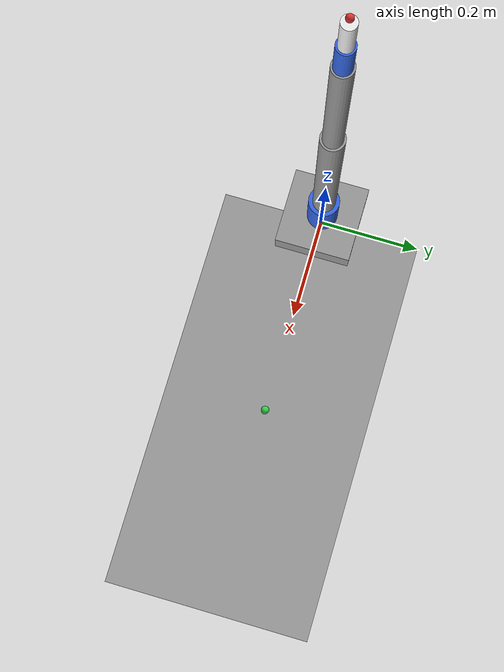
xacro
<?xml version="1.0"?>
<robot name="carotid_arm" xmlns:xacro="http://www.ros.org/wiki/xacro">

  <!-- ═══════════════════════════════════════════════
       Properties
  ═══════════════════════════════════════════════ -->
  <xacro:property name="link_radius"  value="0.025"/>
  <xacro:property name="gray"   value="0.6 0.6 0.6 1"/>
  <xacro:property name="blue"   value="0.2 0.4 0.9 1"/>
  <xacro:property name="red"    value="0.9 0.2 0.2 1"/>
  <xacro:property name="green"  value="0.2 0.8 0.3 1"/>
  <xacro:property name="white"  value="0.95 0.95 0.95 1"/>

  <!-- ═══════════════════════════════════════════════
       Materials
  ═══════════════════════════════════════════════ -->
  <material name="gray">  <color rgba="${gray}"/>  </material>
  <material name="blue">  <color rgba="${blue}"/>  </material>
  <material name="red">   <color rgba="${red}"/>   </material>
  <material name="green"> <color rgba="${green}"/> </material>
  <material name="white"> <color rgba="${white}"/> </material>

  <!-- ═══════════════════════════════════════════════
       Macro: cylindrical link
       params: name, length, radius, color
  ═══════════════════════════════════════════════ -->
  <xacro:macro name="cylinder_link" params="name length radius color">
    <link name="${name}">
      <visual>
        <origin xyz="0 0 ${length/2}" rpy="0 0 0"/>
        <geometry><cylinder length="${length}" radius="${radius}"/></geometry>
        <material name="${color}"/>
      </visual>
      <collision>
        <origin xyz="0 0 ${length/2}" rpy="0 0 0"/>
        <geometry><cylinder length="${length}" radius="${radius}"/></geometry>
      </collision>
      <inertial>
        <mass value="0.5"/>
        <origin xyz="0 0 ${length/2}"/>
        <inertia ixx="0.001" ixy="0" ixz="0" iyy="0.001" iyz="0" izz="0.0005"/>
      </inertial>
    </link>
  </xacro:macro>

  <!-- ═══════════════════════════════════════════════
       Macro: revolute joint
  ═══════════════════════════════════════════════ -->
  <xacro:macro name="rev_joint" params="name parent child axis_xyz
                                         origin_xyz origin_rpy
                                         lower upper">
    <joint name="${name}" type="revolute">
      <parent link="${parent}"/>
      <child link="${child}"/>
      <origin xyz="${origin_xyz}" rpy="${origin_rpy}"/>
      <axis xyz="${axis_xyz}"/>
      <limit lower="${lower}" upper="${upper}" effort="80" velocity="1.0"/>
      <dynamics damping="0.5" friction="0.1"/>
    </joint>
  </xacro:macro>

  <!-- ═══════════════════════════════════════════════
       World / base
  ═══════════════════════════════════════════════ -->
  <link name="world"/>

  <joint name="world_to_base" type="fixed">
    <parent link="world"/>
    <child link="base_link"/>
    <origin xyz="0 0 0" rpy="0 0 0"/>
  </joint>

  <!-- Base -->
  <link name="base_link">
    <visual>
      <geometry><box size="0.15 0.15 0.05"/></geometry>
      <origin xyz="0 0 0.025"/>
      <material name="gray"/>
    </visual>
    <collision>
      <geometry><box size="0.15 0.15 0.05"/></geometry>
      <origin xyz="0 0 0.025"/>
    </collision>
    <inertial>
      <mass value="2.0"/>
      <inertia ixx="0.01" ixy="0" ixz="0" iyy="0.01" iyz="0" izz="0.01"/>
    </inertial>
  </link>

  <!-- ═══════════════════════════════════════════════
       Shoulder yaw
  ═══════════════════════════════════════════════ -->
  <xacro:rev_joint name="joint_base_rot"
    parent="base_link" child="link_shoulder"
    axis_xyz="0 0 1"
    origin_xyz="0 0 0.05" origin_rpy="0 0 0"
    lower="-3.1416" upper="3.1416"/>

  <xacro:cylinder_link name="link_shoulder" length="0.08" radius="0.03" color="blue"/>

  <!-- ═══════════════════════════════════════════════
       Shoulder pitch
  ═══════════════════════════════════════════════ -->
  <xacro:rev_joint name="joint_shoulder"
    parent="link_shoulder" child="link_upper_arm"
    axis_xyz="0 1 0"
    origin_xyz="0 0 0.08" origin_rpy="0 0 0"
    lower="-1.5708" upper="1.5708"/>

  <xacro:cylinder_link name="link_upper_arm" length="0.30" radius="0.022" color="gray"/>

  <!-- ═══════════════════════════════════════════════
       Elbow
  ═══════════════════════════════════════════════ -->
  <xacro:rev_joint name="joint_elbow"
    parent="link_upper_arm" child="link_forearm"
    axis_xyz="0 1 0"
    origin_xyz="0 0 0.30" origin_rpy="0 0 0"
    lower="-2.3562" upper="2.3562"/>

  <xacro:cylinder_link name="link_forearm" length="0.25" radius="0.018" color="gray"/>

  <!-- ═══════════════════════════════════════════════
       Wrist pitch
  ═══════════════════════════════════════════════ -->
  <xacro:rev_joint name="joint_wrist_pitch"
    parent="link_forearm" child="link_wrist"
    axis_xyz="0 1 0"
    origin_xyz="0 0 0.25" origin_rpy="0 0 0"
    lower="-1.5708" upper="1.5708"/>

  <xacro:cylinder_link name="link_wrist" length="0.06" radius="0.015" color="blue"/>

  <!-- ═══════════════════════════════════════════════
       Wrist roll
  ═══════════════════════════════════════════════ -->
  <xacro:rev_joint name="joint_wrist_roll"
    parent="link_wrist" child="link_end_effector"
    axis_xyz="0 0 1"
    origin_xyz="0 0 0.06" origin_rpy="0 0 0"
    lower="-3.1416" upper="3.1416"/>

  <!-- End-effector body (represents probe holder) -->
  <link name="link_end_effector">
    <visual>
      <geometry><cylinder length="0.06" radius="0.012"/></geometry>
      <origin xyz="0 0 0.03"/>
      <material name="white"/>
    </visual>
    <collision>
      <geometry><cylinder length="0.06" radius="0.012"/></geometry>
      <origin xyz="0 0 0.03"/>
    </collision>
    <inertial>
      <mass value="0.1"/>
      <inertia ixx="0.0001" ixy="0" ixz="0" iyy="0.0001" iyz="0" izz="0.00005"/>
    </inertial>
  </link>

  <!-- Probe tip (fixed frame, used for target tracking) -->
  <joint name="joint_probe_tip" type="fixed">
    <parent link="link_end_effector"/>
    <child link="probe_tip"/>
    <origin xyz="0 0 0.07" rpy="0 0 0"/>
  </joint>

  <link name="probe_tip">
    <visual>
      <geometry><sphere radius="0.006"/></geometry>
      <material name="red"/>
    </visual>
    <inertial>
      <mass value="0.01"/>
      <inertia ixx="0.00001" ixy="0" ixz="0" iyy="0.00001" iyz="0" izz="0.00001"/>
    </inertial>
  </link>

  <!-- ═══════════════════════════════════════════════
       Patient table (static environment)
  ═══════════════════════════════════════════════ -->
  <joint name="joint_table" type="fixed">
    <parent link="world"/>
    <child link="patient_table"/>
    <origin xyz="0.4 0 -0.01" rpy="0 0 0"/>
  </joint>

  <link name="patient_table">
    <visual>
      <geometry><box size="0.8 0.4 0.02"/></geometry>
      <origin xyz="0 0 0.01"/>
      <material name="gray"/>
    </visual>
    <collision>
      <geometry><box size="0.8 0.4 0.02"/></geometry>
      <origin xyz="0 0 0.01"/>
    </collision>
    <inertial>
      <mass value="20.0"/>
      <inertia ixx="0.1" ixy="0" ixz="0" iyy="0.1" iyz="0" izz="0.1"/>
    </inertial>
  </link>

  <!-- Target marker (moved by planner) -->
  <joint name="joint_target" type="fixed">
    <parent link="world"/>
    <child link="target_vessel"/>
    <origin xyz="0.4 0.0 0.02" rpy="0 0 0"/>
  </joint>

  <link name="target_vessel">
    <visual>
      <geometry><sphere radius="0.008"/></geometry>
      <material name="green"/>
    </visual>
    <inertial>
      <mass value="0.001"/>
      <inertia ixx="0.000001" ixy="0" ixz="0" iyy="0.000001" iyz="0" izz="0.000001"/>
    </inertial>
  </link>

</robot>
